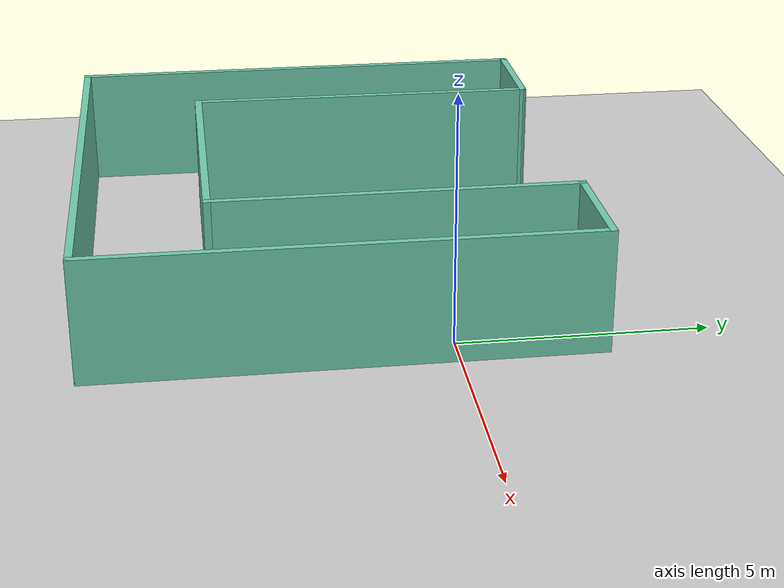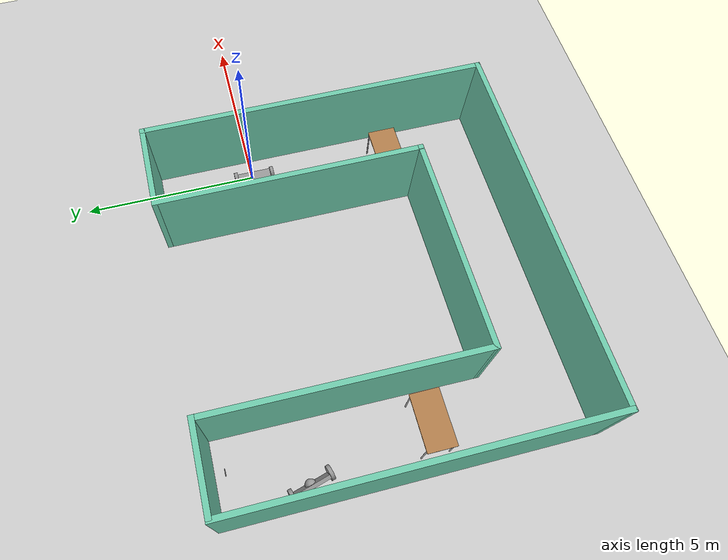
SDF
<sdf version="1.7">
 <world name="default">
  <plugin name="welcome_message" filename="libwelcome_message.so"/>
  <light name="sun" type="directional">
   <pose>0 0 10 0 -0 0</pose>
   <diffuse>0.8 0.8 0.8 1</diffuse>
   <specular>0.2 0.2 0.2 1</specular>
   <attenuation>
    <range>1000</range>
    <constant>0.9</constant>
    <linear>0.01</linear>
    <quadratic>0.001</quadratic>
   </attenuation>
   <direction>-0.5 0.1 -0.9</direction>
   <spot><inner_angle>0</inner_angle><outer_angle>0</outer_angle><falloff>0</falloff></spot>
  </light>
  <model name="ground_plane">
   <static>1</static>
   <link name="link">
    <collision name="collision">
     <geometry><plane><normal>0 0 1</normal><size>100 100</size></plane></geometry>
     <surface><friction><ode><mu>100</mu><mu2>50</mu2></ode></friction></surface>
    </collision>
    <visual name="visual">
     <cast_shadows>0</cast_shadows>
     <geometry><plane><normal>0 0 1</normal><size>100 100</size></plane></geometry>
     <material>
      <script><uri>file://media/materials/scripts/gazebo.material</uri><name>Gazebo/Grey</name></script>
     </material>
    </visual>
   </link>
  </model>
  <gravity>0 0 -9.8</gravity>
  <magnetic_field>6e-06 2.3e-05 -4.2e-05</magnetic_field>
  <atmosphere type="adiabatic"/>
  <physics type="ode">
   <max_step_size>0.001</max_step_size>
   <real_time_factor>1</real_time_factor>
   <real_time_update_rate>1000</real_time_update_rate>
  </physics>
  <scene><ambient>0.4 0.4 0.4 1</ambient><background>0.7 0.7 0.7 1</background><shadows>1</shadows></scene>
  <spherical_coordinates>
   <surface_model>EARTH_WGS84</surface_model>
   <latitude_deg>0</latitude_deg>
   <longitude_deg>0</longitude_deg>
   <elevation>0</elevation>
   <heading_deg>0</heading_deg>
  </spherical_coordinates>
  <model name="robot">
   <link name="link_3">
    <inertial>
     <mass>1</mass>
     <inertia>
      <ixx>0.166667</ixx>
      <ixy>0</ixy>
      <ixz>0</ixz>
      <iyy>0.166667</iyy>
      <iyz>0</iyz>
      <izz>0.166667</izz>
     </inertia>
    </inertial>
    <pose>0 0 -0.015 0 -0 0</pose>
    <visual name="visual">
     <geometry><box><size>0.3 1 0.1</size></box></geometry>
     <material>
      <lighting>1</lighting>
      <script><uri>file://media/materials/scripts/gazebo.material</uri><name>Gazebo/Grey</name></script>
      <shader type="pixel"><normal_map>__default__</normal_map></shader>
      <ambient>0.3 0.3 0.3 1</ambient>
      <diffuse>0.7 0.7 0.7 1</diffuse>
      <specular>0.01 0.01 0.01 1</specular>
      <emissive>0 0 0 1</emissive>
     </material>
    </visual>
    <collision name="collision">
     <geometry><box><size>0.3 1 0.1</size></box></geometry>
     <surface>
      <friction>
       <ode><mu>1</mu><mu2>1</mu2><fdir1>0 0 0</fdir1><slip1>0</slip1><slip2>0</slip2></ode>
       <torsional>
        <coefficient>1</coefficient>
        <patch_radius>0</patch_radius>
        <surface_radius>0</surface_radius>
        <use_patch_radius>1</use_patch_radius>
        <ode><slip>0</slip></ode>
       </torsional>
      </friction>
      <bounce><restitution_coefficient>0</restitution_coefficient><threshold>1e+06</threshold></bounce>
      <contact>
       <collide_without_contact>0</collide_without_contact>
       <collide_without_contact_bitmask>1</collide_without_contact_bitmask>
       <collide_bitmask>1</collide_bitmask>
       <ode>
        <soft_cfm>0</soft_cfm>
        <soft_erp>0.2</soft_erp>
        <kp>1e+13</kp>
        <kd>1</kd>
        <max_vel>0.01</max_vel>
        <min_depth>0</min_depth>
       </ode>
       <bullet>
        <split_impulse>1</split_impulse>
        <split_impulse_penetration_threshold>-0.01</split_impulse_penetration_threshold>
        <soft_cfm>0</soft_cfm>
        <soft_erp>0.2</soft_erp>
        <kp>1e+13</kp>
        <kd>1</kd>
       </bullet>
      </contact>
     </surface>
    </collision>
   </link>
   <link name="link_4">
    <inertial>
     <mass>1</mass>
     <inertia><ixx>0.145833</ixx><ixy>0</ixy><ixz>0</ixz><iyy>0.145833</iyy><iyz>0</iyz><izz>0.125</izz></inertia>
    </inertial>
    <pose>0 -0.550019 -0.015 1.5707 -0 0</pose>
    <visual name="visual">
     <geometry><cylinder><radius>0.2</radius><length>0.1</length></cylinder></geometry>
     <material>
      <lighting>1</lighting>
      <script><uri>file://media/materials/scripts/gazebo.material</uri><name>Gazebo/Grey</name></script>
      <shader type="pixel"><normal_map>__default__</normal_map></shader>
      <ambient>0.3 0.3 0.3 1</ambient>
      <diffuse>0.7 0.7 0.7 1</diffuse>
      <specular>0.01 0.01 0.01 1</specular>
      <emissive>0 0 0 1</emissive>
     </material>
    </visual>
    <collision name="collision">
     <geometry><cylinder><radius>0.2</radius><length>0.1</length></cylinder></geometry>
     <surface>
      <friction>
       <ode><mu>1</mu><mu2>1</mu2><fdir1>0 0 0</fdir1><slip1>0</slip1><slip2>0</slip2></ode>
       <torsional>
        <coefficient>1</coefficient>
        <patch_radius>0</patch_radius>
        <surface_radius>0</surface_radius>
        <use_patch_radius>1</use_patch_radius>
        <ode><slip>0</slip></ode>
       </torsional>
      </friction>
      <bounce><restitution_coefficient>0</restitution_coefficient><threshold>1e+06</threshold></bounce>
      <contact>
       <collide_without_contact>0</collide_without_contact>
       <collide_without_contact_bitmask>1</collide_without_contact_bitmask>
       <collide_bitmask>1</collide_bitmask>
       <ode>
        <soft_cfm>0</soft_cfm>
        <soft_erp>0.2</soft_erp>
        <kp>1e+13</kp>
        <kd>1</kd>
        <max_vel>0.01</max_vel>
        <min_depth>0</min_depth>
       </ode>
       <bullet>
        <split_impulse>1</split_impulse>
        <split_impulse_penetration_threshold>-0.01</split_impulse_penetration_threshold>
        <soft_cfm>0</soft_cfm>
        <soft_erp>0.2</soft_erp>
        <kp>1e+13</kp>
        <kd>1</kd>
       </bullet>
      </contact>
     </surface>
    </collision>
   </link>
   <link name="link_4_clone">
    <inertial>
     <mass>1</mass>
     <inertia><ixx>0.145833</ixx><ixy>0</ixy><ixz>0</ixz><iyy>0.145833</iyy><iyz>0</iyz><izz>0.125</izz></inertia>
    </inertial>
    <pose>0 0.550019 0.03 1.5707 -0 0</pose>
    <visual name="visual">
     <geometry><cylinder><radius>0.2</radius><length>0.1</length></cylinder></geometry>
     <material>
      <lighting>1</lighting>
      <script><uri>file://media/materials/scripts/gazebo.material</uri><name>Gazebo/Grey</name></script>
      <shader type="pixel"><normal_map>__default__</normal_map></shader>
      <ambient>0.3 0.3 0.3 1</ambient>
      <diffuse>0.7 0.7 0.7 1</diffuse>
      <specular>0.01 0.01 0.01 1</specular>
      <emissive>0 0 0 1</emissive>
     </material>
    </visual>
    <collision name="collision">
     <geometry><cylinder><radius>0.2</radius><length>0.1</length></cylinder></geometry>
     <surface>
      <friction>
       <ode><mu>1</mu><mu2>1</mu2><fdir1>0 0 0</fdir1><slip1>0</slip1><slip2>0</slip2></ode>
       <torsional>
        <coefficient>1</coefficient>
        <patch_radius>0</patch_radius>
        <surface_radius>0</surface_radius>
        <use_patch_radius>1</use_patch_radius>
        <ode><slip>0</slip></ode>
       </torsional>
      </friction>
      <bounce><restitution_coefficient>0</restitution_coefficient><threshold>1e+06</threshold></bounce>
      <contact>
       <collide_without_contact>0</collide_without_contact>
       <collide_without_contact_bitmask>1</collide_without_contact_bitmask>
       <collide_bitmask>1</collide_bitmask>
       <ode>
        <soft_cfm>0</soft_cfm>
        <soft_erp>0.2</soft_erp>
        <kp>1e+13</kp>
        <kd>1</kd>
        <max_vel>0.01</max_vel>
        <min_depth>0</min_depth>
       </ode>
       <bullet>
        <split_impulse>1</split_impulse>
        <split_impulse_penetration_threshold>-0.01</split_impulse_penetration_threshold>
        <soft_cfm>0</soft_cfm>
        <soft_erp>0.2</soft_erp>
        <kp>1e+13</kp>
        <kd>1</kd>
       </bullet>
      </contact>
     </surface>
    </collision>
   </link>
   <joint name="link_3_JOINT_0" type="revolute">
    <parent>link_3</parent>
    <child>link_4</child>
    <axis>
     <xyz>0 0 1</xyz>
     <limit>
      <lower>-1.79769e+308</lower>
      <upper>1.79769e+308</upper>
      <effort>-1</effort>
      <velocity>-1</velocity>
     </limit>
     <dynamics>
      <spring_reference>0</spring_reference>
      <spring_stiffness>0</spring_stiffness>
      <damping>0</damping>
      <friction>0</friction>
     </dynamics>
    </axis>
    <physics>
     <ode><limit><cfm>0</cfm><erp>0.2</erp></limit><suspension><cfm>0</cfm><erp>0.2</erp></suspension></ode>
    </physics>
   </joint>
   <joint name="link_3_JOINT_1" type="revolute">
    <parent>link_3</parent>
    <child>link_4_clone</child>
    <axis>
     <xyz>0 0 1</xyz>
     <limit>
      <lower>-1.79769e+308</lower>
      <upper>1.79769e+308</upper>
      <effort>-1</effort>
      <velocity>-1</velocity>
     </limit>
     <dynamics>
      <spring_reference>0</spring_reference>
      <spring_stiffness>0</spring_stiffness>
      <damping>0</damping>
      <friction>0</friction>
     </dynamics>
    </axis>
    <physics>
     <ode><limit><cfm>0</cfm><erp>0.2</erp></limit><suspension><cfm>0</cfm><erp>0.2</erp></suspension></ode>
    </physics>
   </joint>
   <static>0</static>
   <pose>0.057043 -0.075042 0 0 -0 0</pose>
  </model>
  <model name="building">
   <pose>-4.49902 -2.11816 0 0 -0 0</pose>
   <link name="Wall_2">
    <collision name="Wall_2_Collision">
     <geometry><box><size>10 0.15 2.5</size></box></geometry>
     <pose>0 0 1.25 0 -0 0</pose>
    </collision>
    <visual name="Wall_2_Visual">
     <pose>0 0 1.25 0 -0 0</pose>
     <geometry><box><size>10 0.15 2.5</size></box></geometry>
     <material>
      <script><uri>file://media/materials/scripts/gazebo.material</uri><name>Gazebo/Grey</name></script>
      <ambient>0.435294 0.796078 0.67451 1</ambient>
     </material>
     <meta><layer>0</layer></meta>
    </visual>
    <pose>-5.175 0 0 0 -0 -1.57079</pose>
   </link>
   <link name="Wall_3">
    <collision name="Wall_3_Collision">
     <geometry><box><size>10.5 0.15 2.5</size></box></geometry>
     <pose>0 0 1.25 0 -0 0</pose>
    </collision>
    <visual name="Wall_3_Visual">
     <pose>0 0 1.25 0 -0 0</pose>
     <geometry><box><size>10.5 0.15 2.5</size></box></geometry>
     <material>
      <script><uri>file://media/materials/scripts/gazebo.material</uri><name>Gazebo/Grey</name></script>
      <ambient>0.435294 0.796078 0.67451 1</ambient>
     </material>
     <meta><layer>0</layer></meta>
    </visual>
    <pose>1.6e-05 -4.92484 0 0 -0 0</pose>
   </link>
   <link name="Wall_4">
    <collision name="Wall_4_Collision">
     <geometry><box><size>10 0.15 2.5</size></box></geometry>
     <pose>0 0 1.25 0 -0 0</pose>
    </collision>
    <visual name="Wall_4_Visual">
     <pose>0 0 1.25 0 -0 0</pose>
     <geometry><box><size>10 0.15 2.5</size></box></geometry>
     <material>
      <script><uri>file://media/materials/scripts/gazebo.material</uri><name>Gazebo/Grey</name></script>
      <ambient>0.435294 0.796078 0.67451 1</ambient>
     </material>
     <meta><layer>0</layer></meta>
    </visual>
    <pose>5.175 0 0 0 -0 1.5708</pose>
   </link>
   <link name="Wall_5">
    <collision name="Wall_5_Collision">
     <geometry><box><size>2.5 0.15 2.5</size></box></geometry>
     <pose>0 0 1.25 0 -0 0</pose>
    </collision>
    <visual name="Wall_5_Visual">
     <pose>0 0 1.25 0 -0 0</pose>
     <geometry><box><size>2.5 0.15 2.5</size></box></geometry>
     <material>
      <script><uri>file://media/materials/scripts/gazebo.material</uri><name>Gazebo/Grey</name></script>
      <ambient>0.435294 0.796078 0.67451 1</ambient>
     </material>
     <meta><layer>0</layer></meta>
    </visual>
    <pose>3.99998 4.92484 0 0 -0 3.14159</pose>
   </link>
   <link name="Wall_6">
    <collision name="Wall_6_Collision">
     <geometry><box><size>7.5 0.15 2.5</size></box></geometry>
     <pose>0 0 1.25 0 -0 0</pose>
    </collision>
    <visual name="Wall_6_Visual">
     <pose>0 0 1.25 0 -0 0</pose>
     <geometry><box><size>7.5 0.15 2.5</size></box></geometry>
     <material>
      <script><uri>file://media/materials/scripts/gazebo.material</uri><name>Gazebo/Grey</name></script>
      <ambient>0.435294 0.796078 0.67451 1</ambient>
     </material>
     <meta><layer>0</layer></meta>
    </visual>
    <pose>2.82498 1.24984 0 0 -0 -1.5708</pose>
   </link>
   <link name="Wall_7">
    <collision name="Wall_7_Collision">
     <geometry><box><size>6 0.15 2.5</size></box></geometry>
     <pose>0 0 1.25 0 -0 0</pose>
    </collision>
    <visual name="Wall_7_Visual">
     <pose>0 0 1.25 0 -0 0</pose>
     <geometry><box><size>6 0.15 2.5</size></box></geometry>
     <material>
      <script><uri>file://media/materials/scripts/gazebo.material</uri><name>Gazebo/Grey</name></script>
      <ambient>0.435294 0.796078 0.67451 1</ambient>
     </material>
     <meta><layer>0</layer></meta>
    </visual>
    <pose>-0.100018 -2.42516 0 0 -0 3.14159</pose>
   </link>
   <link name="Wall_8">
    <collision name="Wall_8_Collision">
     <geometry><box><size>7.47372 0.15 2.5</size></box></geometry>
     <pose>0 0 1.25 0 -0 0</pose>
    </collision>
    <visual name="Wall_8_Visual">
     <pose>0 0 1.25 0 -0 0</pose>
     <geometry><box><size>7.47372 0.15 2.5</size></box></geometry>
     <material>
      <script><uri>file://media/materials/scripts/gazebo.material</uri><name>Gazebo/Grey</name></script>
      <ambient>0.435294 0.796078 0.67451 1</ambient>
     </material>
     <meta><layer>0</layer></meta>
    </visual>
    <pose>-2.99052 1.23654 0 0 -0 1.56138</pose>
   </link>
   <link name="Wall_9">
    <collision name="Wall_9_Collision">
     <geometry><box><size>2.31964 0.15 2.5</size></box></geometry>
     <pose>0 0 1.25 0 -0 0</pose>
    </collision>
    <visual name="Wall_9_Visual">
     <pose>0 0 1.25 0 -0 0</pose>
     <geometry><box><size>2.31964 0.15 2.5</size></box></geometry>
     <material>
      <script><uri>file://media/materials/scripts/gazebo.material</uri><name>Gazebo/Grey</name></script>
      <ambient>0.435294 0.796078 0.67451 1</ambient>
     </material>
     <meta><layer>0</layer></meta>
    </visual>
    <pose>-4.04052 4.92484 0 0 -0 3.14159</pose>
   </link>
   <static>1</static>
  </model>
  <model name="robot_0">
   <link name="link_3">
    <inertial>
     <mass>1</mass>
     <inertia>
      <ixx>0.166667</ixx>
      <ixy>0</ixy>
      <ixz>0</ixz>
      <iyy>0.166667</iyy>
      <iyz>0</iyz>
      <izz>0.166667</izz>
     </inertia>
    </inertial>
    <pose>0 0 -0.015 0 -0 0</pose>
    <visual name="visual">
     <geometry><box><size>0.3 1 0.1</size></box></geometry>
     <material>
      <lighting>1</lighting>
      <script><uri>file://media/materials/scripts/gazebo.material</uri><name>Gazebo/Grey</name></script>
      <shader type="pixel"><normal_map>__default__</normal_map></shader>
      <ambient>0.3 0.3 0.3 1</ambient>
      <diffuse>0.7 0.7 0.7 1</diffuse>
      <specular>0.01 0.01 0.01 1</specular>
      <emissive>0 0 0 1</emissive>
     </material>
    </visual>
    <collision name="collision">
     <geometry><box><size>0.3 1 0.1</size></box></geometry>
     <surface>
      <friction>
       <ode><mu>1</mu><mu2>1</mu2><fdir1>0 0 0</fdir1><slip1>0</slip1><slip2>0</slip2></ode>
       <torsional>
        <coefficient>1</coefficient>
        <patch_radius>0</patch_radius>
        <surface_radius>0</surface_radius>
        <use_patch_radius>1</use_patch_radius>
        <ode><slip>0</slip></ode>
       </torsional>
      </friction>
      <bounce><restitution_coefficient>0</restitution_coefficient><threshold>1e+06</threshold></bounce>
      <contact>
       <collide_without_contact>0</collide_without_contact>
       <collide_without_contact_bitmask>1</collide_without_contact_bitmask>
       <collide_bitmask>1</collide_bitmask>
       <ode>
        <soft_cfm>0</soft_cfm>
        <soft_erp>0.2</soft_erp>
        <kp>1e+13</kp>
        <kd>1</kd>
        <max_vel>0.01</max_vel>
        <min_depth>0</min_depth>
       </ode>
       <bullet>
        <split_impulse>1</split_impulse>
        <split_impulse_penetration_threshold>-0.01</split_impulse_penetration_threshold>
        <soft_cfm>0</soft_cfm>
        <soft_erp>0.2</soft_erp>
        <kp>1e+13</kp>
        <kd>1</kd>
       </bullet>
      </contact>
     </surface>
    </collision>
   </link>
   <link name="link_0">
    <inertial>
     <mass>1</mass>
     <inertia><ixx>0.1</ixx><ixy>0</ixy><ixz>0</ixz><iyy>0.1</iyy><iyz>0</iyz><izz>0.1</izz></inertia>
    </inertial>
    <pose>-0.02003 -0.019136 0.009201 0.040885 6.7e-05 -0.001512</pose>
    <visual name="visual">
     <geometry><sphere><radius>0.15</radius></sphere></geometry>
     <material>
      <lighting>1</lighting>
      <script><uri>file://media/materials/scripts/gazebo.material</uri><name>Gazebo/Grey</name></script>
      <shader type="pixel"><normal_map>__default__</normal_map></shader>
      <ambient>0.3 0.3 0.3 1</ambient>
      <diffuse>0.7 0.7 0.7 1</diffuse>
      <specular>0.01 0.01 0.01 1</specular>
      <emissive>0 0 0 1</emissive>
     </material>
    </visual>
    <collision name="collision">
     <geometry><sphere><radius>0.15</radius></sphere></geometry>
     <surface>
      <friction>
       <ode><mu>1</mu><mu2>1</mu2><fdir1>0 0 0</fdir1><slip1>0</slip1><slip2>0</slip2></ode>
       <torsional>
        <coefficient>1</coefficient>
        <patch_radius>0</patch_radius>
        <surface_radius>0</surface_radius>
        <use_patch_radius>1</use_patch_radius>
        <ode><slip>0</slip></ode>
       </torsional>
      </friction>
      <bounce><restitution_coefficient>0</restitution_coefficient><threshold>1e+06</threshold></bounce>
      <contact>
       <collide_without_contact>0</collide_without_contact>
       <collide_without_contact_bitmask>1</collide_without_contact_bitmask>
       <collide_bitmask>1</collide_bitmask>
       <ode>
        <soft_cfm>0</soft_cfm>
        <soft_erp>0.2</soft_erp>
        <kp>1e+13</kp>
        <kd>1</kd>
        <max_vel>0.01</max_vel>
        <min_depth>0</min_depth>
       </ode>
       <bullet>
        <split_impulse>1</split_impulse>
        <split_impulse_penetration_threshold>-0.01</split_impulse_penetration_threshold>
        <soft_cfm>0</soft_cfm>
        <soft_erp>0.2</soft_erp>
        <kp>1e+13</kp>
        <kd>1</kd>
       </bullet>
      </contact>
     </surface>
    </collision>
   </link>
   <link name="link_4">
    <inertial>
     <mass>1</mass>
     <inertia><ixx>0.145833</ixx><ixy>0</ixy><ixz>0</ixz><iyy>0.145833</iyy><iyz>0</iyz><izz>0.125</izz></inertia>
    </inertial>
    <pose>0 -0.550019 -0.015 1.5707 -0 0</pose>
    <visual name="visual">
     <geometry><cylinder><radius>0.2</radius><length>0.1</length></cylinder></geometry>
     <material>
      <lighting>1</lighting>
      <script><uri>file://media/materials/scripts/gazebo.material</uri><name>Gazebo/Grey</name></script>
      <shader type="pixel"><normal_map>__default__</normal_map></shader>
      <ambient>0.3 0.3 0.3 1</ambient>
      <diffuse>0.7 0.7 0.7 1</diffuse>
      <specular>0.01 0.01 0.01 1</specular>
      <emissive>0 0 0 1</emissive>
     </material>
    </visual>
    <collision name="collision">
     <geometry><cylinder><radius>0.2</radius><length>0.1</length></cylinder></geometry>
     <surface>
      <friction>
       <ode><mu>1</mu><mu2>1</mu2><fdir1>0 0 0</fdir1><slip1>0</slip1><slip2>0</slip2></ode>
       <torsional>
        <coefficient>1</coefficient>
        <patch_radius>0</patch_radius>
        <surface_radius>0</surface_radius>
        <use_patch_radius>1</use_patch_radius>
        <ode><slip>0</slip></ode>
       </torsional>
      </friction>
      <bounce><restitution_coefficient>0</restitution_coefficient><threshold>1e+06</threshold></bounce>
      <contact>
       <collide_without_contact>0</collide_without_contact>
       <collide_without_contact_bitmask>1</collide_without_contact_bitmask>
       <collide_bitmask>1</collide_bitmask>
       <ode>
        <soft_cfm>0</soft_cfm>
        <soft_erp>0.2</soft_erp>
        <kp>1e+13</kp>
        <kd>1</kd>
        <max_vel>0.01</max_vel>
        <min_depth>0</min_depth>
       </ode>
       <bullet>
        <split_impulse>1</split_impulse>
        <split_impulse_penetration_threshold>-0.01</split_impulse_penetration_threshold>
        <soft_cfm>0</soft_cfm>
        <soft_erp>0.2</soft_erp>
        <kp>1e+13</kp>
        <kd>1</kd>
       </bullet>
      </contact>
     </surface>
    </collision>
   </link>
   <link name="link_4_clone">
    <inertial>
     <mass>1</mass>
     <inertia><ixx>0.145833</ixx><ixy>0</ixy><ixz>0</ixz><iyy>0.145833</iyy><iyz>0</iyz><izz>0.125</izz></inertia>
    </inertial>
    <pose>-0 0.550019 0.03 1.5707 -0 0</pose>
    <visual name="visual">
     <geometry><cylinder><radius>0.2</radius><length>0.1</length></cylinder></geometry>
     <material>
      <lighting>1</lighting>
      <script><uri>file://media/materials/scripts/gazebo.material</uri><name>Gazebo/Grey</name></script>
      <shader type="pixel"><normal_map>__default__</normal_map></shader>
      <ambient>0.3 0.3 0.3 1</ambient>
      <diffuse>0.7 0.7 0.7 1</diffuse>
      <specular>0.01 0.01 0.01 1</specular>
      <emissive>0 0 0 1</emissive>
     </material>
    </visual>
    <collision name="collision">
     <geometry><cylinder><radius>0.2</radius><length>0.1</length></cylinder></geometry>
     <surface>
      <friction>
       <ode><mu>1</mu><mu2>1</mu2><fdir1>0 0 0</fdir1><slip1>0</slip1><slip2>0</slip2></ode>
       <torsional>
        <coefficient>1</coefficient>
        <patch_radius>0</patch_radius>
        <surface_radius>0</surface_radius>
        <use_patch_radius>1</use_patch_radius>
        <ode><slip>0</slip></ode>
       </torsional>
      </friction>
      <bounce><restitution_coefficient>0</restitution_coefficient><threshold>1e+06</threshold></bounce>
      <contact>
       <collide_without_contact>0</collide_without_contact>
       <collide_without_contact_bitmask>1</collide_without_contact_bitmask>
       <collide_bitmask>1</collide_bitmask>
       <ode>
        <soft_cfm>0</soft_cfm>
        <soft_erp>0.2</soft_erp>
        <kp>1e+13</kp>
        <kd>1</kd>
        <max_vel>0.01</max_vel>
        <min_depth>0</min_depth>
       </ode>
       <bullet>
        <split_impulse>1</split_impulse>
        <split_impulse_penetration_threshold>-0.01</split_impulse_penetration_threshold>
        <soft_cfm>0</soft_cfm>
        <soft_erp>0.2</soft_erp>
        <kp>1e+13</kp>
        <kd>1</kd>
       </bullet>
      </contact>
     </surface>
    </collision>
   </link>
   <joint name="link_0_JOINT_0" type="revolute">
    <parent>link_3</parent>
    <child>link_0</child>
    <axis>
     <xyz>1 0 0</xyz>
     <limit>
      <lower>-1.79769e+308</lower>
      <upper>1.79769e+308</upper>
      <effort>-1</effort>
      <velocity>-1</velocity>
     </limit>
     <dynamics>
      <spring_reference>0</spring_reference>
      <spring_stiffness>0</spring_stiffness>
      <damping>0</damping>
     </dynamics>
    </axis>
    <physics>
     <ode><limit><cfm>0</cfm><erp>0.2</erp></limit><suspension><cfm>0</cfm><erp>0.2</erp></suspension></ode>
    </physics>
   </joint>
   <joint name="link_3_JOINT_0" type="revolute">
    <parent>link_3</parent>
    <child>link_4</child>
    <axis>
     <xyz>0 0 1</xyz>
     <limit>
      <lower>-1.79769e+308</lower>
      <upper>1.79769e+308</upper>
      <effort>-1</effort>
      <velocity>-1</velocity>
     </limit>
     <dynamics>
      <spring_reference>0</spring_reference>
      <spring_stiffness>0</spring_stiffness>
      <damping>0</damping>
      <friction>0</friction>
     </dynamics>
    </axis>
    <physics>
     <ode><limit><cfm>0</cfm><erp>0.2</erp></limit><suspension><cfm>0</cfm><erp>0.2</erp></suspension></ode>
    </physics>
   </joint>
   <joint name="link_3_JOINT_1" type="revolute">
    <parent>link_3</parent>
    <child>link_4_clone</child>
    <axis>
     <xyz>0 0 1</xyz>
     <limit>
      <lower>-1.79769e+308</lower>
      <upper>1.79769e+308</upper>
      <effort>-1</effort>
      <velocity>-1</velocity>
     </limit>
     <dynamics>
      <spring_reference>0</spring_reference>
      <spring_stiffness>0</spring_stiffness>
      <damping>0</damping>
      <friction>0</friction>
     </dynamics>
    </axis>
    <physics>
     <ode><limit><cfm>0</cfm><erp>0.2</erp></limit><suspension><cfm>0</cfm><erp>0.2</erp></suspension></ode>
    </physics>
   </joint>
   <static>0</static>
   <pose>-9.22237 0.413849 0.197815 -0.040903 -1.1641 -2.83293</pose>
  </model>
  <model name="sign_stop">
   <static>1</static>
   <link name="link">
    <pose>0 0 0.14 0 -0 0</pose>
    <visual name="visual">
     <cast_shadows>0</cast_shadows>
     <geometry><box><size>0.003668 0.181404 0.2404</size></box></geometry>
     <material>
      <script>
       <uri>model://sign_stop/materials/scripts</uri>
       <uri>model://sign_stop/materials/textures</uri>
       <name>stop</name>
      </script>
     </material>
    </visual>
   </link>
   <pose>-8.41156 2.44954 0 0 -0 1.57</pose>
  </model>
  <model name="table">
   <static>1</static>
   <link name="link">
    <collision name="surface">
     <pose>0 0 1 0 -0 0</pose>
     <geometry><box><size>1.5 0.8 0.03</size></box></geometry>
     <surface><friction><ode><mu>0.6</mu><mu2>0.6</mu2></ode></friction></surface>
    </collision>
    <visual name="visual1">
     <pose>0 0 1 0 -0 0</pose>
     <geometry><box><size>1.5 0.8 0.03</size></box></geometry>
     <material>
      <script><uri>file://media/materials/scripts/gazebo.material</uri><name>Gazebo/Wood</name></script>
     </material>
    </visual>
    <collision name="front_left_leg">
     <pose>0.68 0.38 0.5 0 -0 0</pose>
     <geometry><cylinder><radius>0.02</radius><length>1</length></cylinder></geometry>
    </collision>
    <visual name="front_left_leg">
     <pose>0.68 0.38 0.5 0 -0 0</pose>
     <geometry><cylinder><radius>0.02</radius><length>1</length></cylinder></geometry>
     <material>
      <script><uri>file://media/materials/scripts/gazebo.material</uri><name>Gazebo/Grey</name></script>
     </material>
    </visual>
    <collision name="front_right_leg">
     <pose>0.68 -0.38 0.5 0 -0 0</pose>
     <geometry><cylinder><radius>0.02</radius><length>1</length></cylinder></geometry>
    </collision>
    <visual name="front_right_leg">
     <pose>0.68 -0.38 0.5 0 -0 0</pose>
     <geometry><cylinder><radius>0.02</radius><length>1</length></cylinder></geometry>
     <material>
      <script><uri>file://media/materials/scripts/gazebo.material</uri><name>Gazebo/Grey</name></script>
     </material>
    </visual>
    <collision name="back_right_leg">
     <pose>-0.68 -0.38 0.5 0 -0 0</pose>
     <geometry><cylinder><radius>0.02</radius><length>1</length></cylinder></geometry>
    </collision>
    <visual name="back_right_leg">
     <pose>-0.68 -0.38 0.5 0 -0 0</pose>
     <geometry><cylinder><radius>0.02</radius><length>1</length></cylinder></geometry>
     <material>
      <script><uri>file://media/materials/scripts/gazebo.material</uri><name>Gazebo/Grey</name></script>
     </material>
    </visual>
    <collision name="back_left_leg">
     <pose>-0.68 0.38 0.5 0 -0 0</pose>
     <geometry><cylinder><radius>0.02</radius><length>1</length></cylinder></geometry>
    </collision>
    <visual name="back_left_leg">
     <pose>-0.68 0.38 0.5 0 -0 0</pose>
     <geometry><cylinder><radius>0.02</radius><length>1</length></cylinder></geometry>
     <material>
      <script><uri>file://media/materials/scripts/gazebo.material</uri><name>Gazebo/Grey</name></script>
     </material>
    </visual>
   </link>
   <pose>-8.56037 -2.85072 0 0 -0 0</pose>
  </model>
  <model name="table_0">
   <static>1</static>
   <link name="link">
    <collision name="surface">
     <pose>0 0 1 0 -0 0</pose>
     <geometry><box><size>1.5 0.8 0.03</size></box></geometry>
     <surface><friction><ode><mu>0.6</mu><mu2>0.6</mu2></ode></friction></surface>
    </collision>
    <visual name="visual1">
     <pose>0 0 1 0 -0 0</pose>
     <geometry><box><size>1.5 0.8 0.03</size></box></geometry>
     <material>
      <script><uri>file://media/materials/scripts/gazebo.material</uri><name>Gazebo/Wood</name></script>
     </material>
    </visual>
    <collision name="front_left_leg">
     <pose>0.68 0.38 0.5 0 -0 0</pose>
     <geometry><cylinder><radius>0.02</radius><length>1</length></cylinder></geometry>
    </collision>
    <visual name="front_left_leg">
     <pose>0.68 0.38 0.5 0 -0 0</pose>
     <geometry><cylinder><radius>0.02</radius><length>1</length></cylinder></geometry>
     <material>
      <script><uri>file://media/materials/scripts/gazebo.material</uri><name>Gazebo/Grey</name></script>
     </material>
    </visual>
    <collision name="front_right_leg">
     <pose>0.68 -0.38 0.5 0 -0 0</pose>
     <geometry><cylinder><radius>0.02</radius><length>1</length></cylinder></geometry>
    </collision>
    <visual name="front_right_leg">
     <pose>0.68 -0.38 0.5 0 -0 0</pose>
     <geometry><cylinder><radius>0.02</radius><length>1</length></cylinder></geometry>
     <material>
      <script><uri>file://media/materials/scripts/gazebo.material</uri><name>Gazebo/Grey</name></script>
     </material>
    </visual>
    <collision name="back_right_leg">
     <pose>-0.68 -0.38 0.5 0 -0 0</pose>
     <geometry><cylinder><radius>0.02</radius><length>1</length></cylinder></geometry>
    </collision>
    <visual name="back_right_leg">
     <pose>-0.68 -0.38 0.5 0 -0 0</pose>
     <geometry><cylinder><radius>0.02</radius><length>1</length></cylinder></geometry>
     <material>
      <script><uri>file://media/materials/scripts/gazebo.material</uri><name>Gazebo/Grey</name></script>
     </material>
    </visual>
    <collision name="back_left_leg">
     <pose>-0.68 0.38 0.5 0 -0 0</pose>
     <geometry><cylinder><radius>0.02</radius><length>1</length></cylinder></geometry>
    </collision>
    <visual name="back_left_leg">
     <pose>-0.68 0.38 0.5 0 -0 0</pose>
     <geometry><cylinder><radius>0.02</radius><length>1</length></cylinder></geometry>
     <material>
      <script><uri>file://media/materials/scripts/gazebo.material</uri><name>Gazebo/Grey</name></script>
     </material>
    </visual>
   </link>
   <pose>-0.645369 -4.06986 0 0 -0 0</pose>
  </model>
  <model name="my_ball">
   <link name="link_0">
    <inertial>
     <mass>1</mass>
     <inertia><ixx>0.1</ixx><ixy>0</ixy><ixz>0</ixz><iyy>0.1</iyy><iyz>0</iyz><izz>0.1</izz></inertia>
    </inertial>
    <visual name="visual">
     <geometry><sphere><radius>0.1</radius></sphere></geometry>
     <material>
      <lighting>1</lighting>
      <script><uri>file://media/materials/scripts/gazebo.material</uri><name>Gazebo/Grey</name></script>
      <shader type="pixel"><normal_map>__default__</normal_map></shader>
      <ambient>1 1 1 1</ambient>
      <diffuse>1 1 1 1</diffuse>
      <specular>1 1 1 1</specular>
      <emissive>1 1 1 1</emissive>
     </material>
    </visual>
    <collision name="collision">
     <geometry><sphere><radius>0.1</radius></sphere></geometry>
     <surface>
      <friction>
       <ode><mu>1</mu><mu2>1</mu2><fdir1>0 0 0</fdir1><slip1>0</slip1><slip2>0</slip2></ode>
       <torsional>
        <coefficient>1</coefficient>
        <patch_radius>0</patch_radius>
        <surface_radius>0</surface_radius>
        <use_patch_radius>1</use_patch_radius>
        <ode><slip>0</slip></ode>
       </torsional>
      </friction>
      <bounce><restitution_coefficient>0</restitution_coefficient><threshold>1e+06</threshold></bounce>
      <contact>
       <collide_without_contact>0</collide_without_contact>
       <collide_without_contact_bitmask>1</collide_without_contact_bitmask>
       <collide_bitmask>1</collide_bitmask>
       <ode>
        <soft_cfm>0</soft_cfm>
        <soft_erp>0.2</soft_erp>
        <kp>1e+13</kp>
        <kd>1</kd>
        <max_vel>0.01</max_vel>
        <min_depth>0</min_depth>
       </ode>
       <bullet>
        <split_impulse>1</split_impulse>
        <split_impulse_penetration_threshold>-0.01</split_impulse_penetration_threshold>
        <soft_cfm>0</soft_cfm>
        <soft_erp>0.2</soft_erp>
        <kp>1e+13</kp>
        <kd>1</kd>
       </bullet>
      </contact>
     </surface>
    </collision>
   </link>
   <static>0</static>
   <pose>-0.742619 0.339589 0.1 0 -0 0</pose>
  </model>
 </world>
</sdf>
